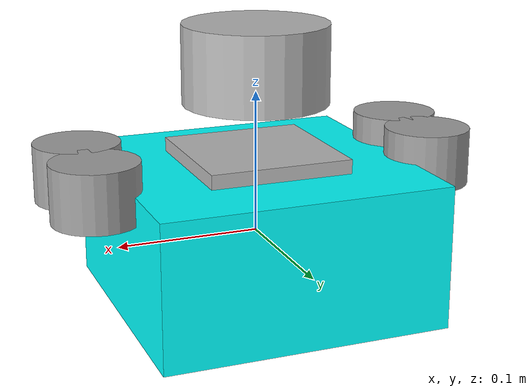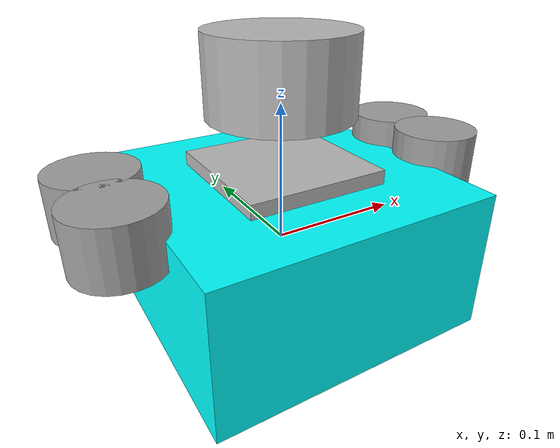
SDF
<sdf version='1.10'>
  <model name='x500_lidar'>
    <link name='base_link'>
      <inertial>
        <pose>0 0 0.001109298531810767 1.5707963267948959 -5.5511151231257827e-17 1.5707963267948959</pose>
        <mass>15.324999999999999</mass>
        <inertia>
          <ixx>0.065634475258292566</ixx>
          <ixy>-1.368455531567204e-48</ixy>
          <ixz>0</ixz>
          <iyy>0.1013333333333333</iyy>
          <iyz>-5.1022198180205497e-19</iyz>
          <izz>0.065634475258292566</izz>
        </inertia>
      </inertial>
      <collision name='base_link_collision'>
        <pose>0 0 0 0 0 0</pose>
        <geometry>
          <box>
            <size>0.20000000000000001 0.20000000000000001 0.10000000000000001</size>
          </box>
        </geometry>
      </collision>
      <collision name='base_link_fixed_joint_lump__air_link_collision_1'>
        <pose>0 0 0.01 0 0 0</pose>
        <geometry>
          <box>
            <size>0.10000000000000001 0.10000000000000001 0.10000000000000001</size>
          </box>
        </geometry>
        <surface>
          <contact>
            <ode/>
          </contact>
          <friction>
            <ode/>
          </friction>
        </surface>
      </collision>
      <collision name='base_link_fixed_joint_lump__imu_link_collision_2'>
        <pose>0 0 0.01 0 0 0</pose>
        <geometry>
          <box>
            <size>0.10000000000000001 0.10000000000000001 0.10000000000000001</size>
          </box>
        </geometry>
        <surface>
          <contact>
            <ode/>
          </contact>
          <friction>
            <ode/>
          </friction>
        </surface>
      </collision>
      <collision name='base_link_fixed_joint_lump__lidar_link_collision_3'>
        <pose>0 0 0.12 0 0 0</pose>
        <geometry>
          <cylinder>
            <length>0.055</length>
            <radius>0.050799999999999998</radius>
          </cylinder>
        </geometry>
        <surface>
          <contact>
            <ode/>
          </contact>
          <friction>
            <ode/>
          </friction>
        </surface>
      </collision>
      <visual name='base_link_visual'>
        <pose>0 0 0 0 0 0</pose>
        <geometry>
          <box>
            <size>0.20000000000000001 0.20000000000000001 0.10000000000000001</size>
          </box>
        </geometry>
        <material>
          <diffuse>0 1 1 1</diffuse>
          <ambient>0 1 1 1</ambient>
        </material>
      </visual>
      <visual name='base_link_fixed_joint_lump__air_link_visual_1'>
        <pose>0 0 0.01 0 0 0</pose>
        <geometry>
          <box>
            <size>0.10000000000000001 0.10000000000000001 0.10000000000000001</size>
          </box>
        </geometry>
      </visual>
      <visual name='base_link_fixed_joint_lump__imu_link_visual_2'>
        <pose>0 0 0.01 0 0 0</pose>
        <geometry>
          <box>
            <size>0.10000000000000001 0.10000000000000001 0.10000000000000001</size>
          </box>
        </geometry>
      </visual>
      <visual name='base_link_fixed_joint_lump__lidar_link_visual_3'>
        <pose>0 0 0.12 0 0 0</pose>
        <geometry>
          <cylinder>
            <length>0.055</length>
            <radius>0.050799999999999998</radius>
          </cylinder>
        </geometry>
      </visual>
      <sensor name='air_pressure_sensor' type='air_pressure'>
        <plugin name='gz::sim::systems::AirPressure' filename='gz-sim-air-pressure-system'/>
        <always_on>true</always_on>
        <update_rate>50</update_rate>
        <air_pressure>
          <pressure>
            <noise type='gaussian'>
              <mean>0</mean>
              <stddev>0.01</stddev>
            </noise>
          </pressure>
        </air_pressure>
        <pose>0 0 0.01 0 0 0</pose>
        <ignition_frame_id>cae_x500_lidar_0::base_link::air_pressure_sensor</ignition_frame_id>
      </sensor>
      <sensor name='imu_sensor' type='imu'>
        <plugin name='gz::sim::v7::systems::Imu' filename='libgz-sim-imu-system.so'/>
        <always_on>true</always_on>
        <update_rate>250</update_rate>
        <visualize>true</visualize>
        <imu>
          <angular_velocity>
            <x>
              <noise type='gaussian'>
                <mean>0</mean>
                <stddev>0.00020000000000000001</stddev>
                <bias_mean>0</bias_mean>
                <bias_stddev>7.9999999999999996e-07</bias_stddev>
              </noise>
            </x>
            <y>
              <noise type='gaussian'>
                <mean>0</mean>
                <stddev>0.00020000000000000001</stddev>
                <bias_mean>0</bias_mean>
                <bias_stddev>7.9999999999999996e-07</bias_stddev>
              </noise>
            </y>
            <z>
              <noise type='gaussian'>
                <mean>0</mean>
                <stddev>0.00020000000000000001</stddev>
                <bias_mean>0</bias_mean>
                <bias_stddev>7.9999999999999996e-07</bias_stddev>
              </noise>
            </z>
          </angular_velocity>
          <linear_acceleration>
            <x>
              <noise type='gaussian'>
                <mean>0</mean>
                <stddev>0.017000000000000001</stddev>
                <bias_mean>0</bias_mean>
                <bias_stddev>0.001</bias_stddev>
              </noise>
            </x>
            <y>
              <noise type='gaussian'>
                <mean>0</mean>
                <stddev>0.017000000000000001</stddev>
                <bias_mean>0</bias_mean>
                <bias_stddev>0.001</bias_stddev>
              </noise>
            </y>
            <z>
              <noise type='gaussian'>
                <mean>0</mean>
                <stddev>0.017000000000000001</stddev>
                <bias_mean>0</bias_mean>
                <bias_stddev>0.001</bias_stddev>
              </noise>
            </z>
          </linear_acceleration>
        </imu>
        <pose>0 0 0.01 0 0 0</pose>
        <ignition_frame_id>cae_x500_lidar_0::base_link::imu_sensor</ignition_frame_id>
      </sensor>
      <sensor name='lidar' type='gpu_lidar'>
        <always_on>true</always_on>
        <visualize>true</visualize>
        <update_rate>10</update_rate>
        <ray>
          <scan>
            <horizontal>
              <samples>400</samples>
              <resolution>1</resolution>
              <min_angle>0</min_angle>
              <max_angle>6.2800000000000002</max_angle>
            </horizontal>
          </scan>
          <range>
            <min>0.029999999999999999</min>
            <max>15</max>
            <resolution>0.025000000000000001</resolution>
          </range>
          <noise>
            <type>gaussian</type>
            <mean>0</mean>
            <stddev>0.01</stddev>
          </noise>
        </ray>
        <topic>scan</topic>
        <plugin name='gz::sim::systems::Sensors' filename='libgz-sim-sensors-system.so'/>
        <pose>0 0 0.12 0 0 0</pose>
        <ignition_frame_id>lidar_link</ignition_frame_id>
      </sensor>
    </link>
    <joint name='rotor_ne_joint' type='revolute'>
      <pose relative_to='base_link'>0.12 0.025000000000000001 0.050000000000000003 0 0 0</pose>
      <parent>base_link</parent>
      <child>rotor_ne_link</child>
      <axis>
        <xyz>0 0 1</xyz>
        <limit>
          <lower>-inf</lower>
          <upper>inf</upper>
        </limit>
        <dynamics>
          <spring_reference>0</spring_reference>
          <spring_stiffness>0</spring_stiffness>
        </dynamics>
      </axis>
    </joint>
    <link name='rotor_ne_link'>
      <pose relative_to='rotor_ne_joint'>0 0 0 0 0 0</pose>
      <inertial>
        <pose>0 0 0 1.5707963267948959 0 0</pose>
        <mass>0.5</mass>
        <inertia>
          <ixx>0.00017916666666666669</ixx>
          <ixy>0</ixy>
          <ixz>0</ixz>
          <iyy>0.00017916666666666669</iyy>
          <iyz>0</iyz>
          <izz>0.00022499999999999999</izz>
        </inertia>
      </inertial>
      <collision name='rotor_ne_link_fixed_joint_lump__rotor_ne_collision_collision'>
        <pose>0 0 0 0 0 0</pose>
        <geometry>
          <cylinder>
            <length>0.040000000000000001</length>
            <radius>0.029999999999999999</radius>
          </cylinder>
        </geometry>
      </collision>
      <visual name='rotor_ne_link_fixed_joint_lump__rotor_ne_visual_visual'>
        <pose>0 0 0 0 0 0</pose>
        <geometry>
          <cylinder>
            <length>0.040000000000000001</length>
            <radius>0.029999999999999999</radius>
          </cylinder>
        </geometry>
        <material>
          <diffuse>0.625 0.625 0.625 1</diffuse>
          <ambient>0.625 0.625 0.625 1</ambient>
        </material>
      </visual>
    </link>
    <joint name='rotor_no_joint' type='revolute'>
      <pose relative_to='base_link'>-0.12 0.025000000000000001 0.050000000000000003 0 0 0</pose>
      <parent>base_link</parent>
      <child>rotor_no_link</child>
      <axis>
        <xyz>0 0 1</xyz>
        <limit>
          <lower>-inf</lower>
          <upper>inf</upper>
        </limit>
        <dynamics>
          <spring_reference>0</spring_reference>
          <spring_stiffness>0</spring_stiffness>
        </dynamics>
      </axis>
    </joint>
    <link name='rotor_no_link'>
      <pose relative_to='rotor_no_joint'>0 0 0 0 0 0</pose>
      <inertial>
        <pose>0 0 0 1.5707963267948959 0 0</pose>
        <mass>0.5</mass>
        <inertia>
          <ixx>0.00017916666666666669</ixx>
          <ixy>0</ixy>
          <ixz>0</ixz>
          <iyy>0.00017916666666666669</iyy>
          <iyz>0</iyz>
          <izz>0.00022499999999999999</izz>
        </inertia>
      </inertial>
      <collision name='rotor_no_link_fixed_joint_lump__rotor_no_collision_collision'>
        <pose>0 0 0 0 0 0</pose>
        <geometry>
          <cylinder>
            <length>0.040000000000000001</length>
            <radius>0.029999999999999999</radius>
          </cylinder>
        </geometry>
      </collision>
      <visual name='rotor_no_link_fixed_joint_lump__rotor_no_visual_visual'>
        <pose>0 0 0 0 0 0</pose>
        <geometry>
          <cylinder>
            <length>0.040000000000000001</length>
            <radius>0.029999999999999999</radius>
          </cylinder>
        </geometry>
        <material>
          <diffuse>0.625 0.625 0.625 1</diffuse>
          <ambient>0.625 0.625 0.625 1</ambient>
        </material>
      </visual>
    </link>
    <joint name='rotor_se_joint' type='revolute'>
      <pose relative_to='base_link'>0.12 -0.025000000000000001 0.050000000000000003 0 0 0</pose>
      <parent>base_link</parent>
      <child>rotor_se_link</child>
      <axis>
        <xyz>0 0 1</xyz>
        <limit>
          <lower>-inf</lower>
          <upper>inf</upper>
        </limit>
        <dynamics>
          <spring_reference>0</spring_reference>
          <spring_stiffness>0</spring_stiffness>
        </dynamics>
      </axis>
    </joint>
    <link name='rotor_se_link'>
      <pose relative_to='rotor_se_joint'>0 0 0 0 0 0</pose>
      <inertial>
        <pose>0 0 0 1.5707963267948959 0 0</pose>
        <mass>0.5</mass>
        <inertia>
          <ixx>0.00017916666666666669</ixx>
          <ixy>0</ixy>
          <ixz>0</ixz>
          <iyy>0.00017916666666666669</iyy>
          <iyz>0</iyz>
          <izz>0.00022499999999999999</izz>
        </inertia>
      </inertial>
      <collision name='rotor_se_link_fixed_joint_lump__rotor_se_collision_collision'>
        <pose>0 0 0 0 0 0</pose>
        <geometry>
          <cylinder>
            <length>0.040000000000000001</length>
            <radius>0.029999999999999999</radius>
          </cylinder>
        </geometry>
      </collision>
      <visual name='rotor_se_link_fixed_joint_lump__rotor_se_visual_visual'>
        <pose>0 0 0 0 0 0</pose>
        <geometry>
          <cylinder>
            <length>0.040000000000000001</length>
            <radius>0.029999999999999999</radius>
          </cylinder>
        </geometry>
        <material>
          <diffuse>0.625 0.625 0.625 1</diffuse>
          <ambient>0.625 0.625 0.625 1</ambient>
        </material>
      </visual>
    </link>
    <joint name='rotor_so_joint' type='revolute'>
      <pose relative_to='base_link'>-0.12 -0.025000000000000001 0.050000000000000003 0 0 0</pose>
      <parent>base_link</parent>
      <child>rotor_so_link</child>
      <axis>
        <xyz>0 0 1</xyz>
        <limit>
          <lower>-inf</lower>
          <upper>inf</upper>
        </limit>
        <dynamics>
          <spring_reference>0</spring_reference>
          <spring_stiffness>0</spring_stiffness>
        </dynamics>
      </axis>
    </joint>
    <link name='rotor_so_link'>
      <pose relative_to='rotor_so_joint'>0 0 0 0 0 0</pose>
      <inertial>
        <pose>0 0 0 1.5707963267948959 0 0</pose>
        <mass>0.5</mass>
        <inertia>
          <ixx>0.00017916666666666669</ixx>
          <ixy>0</ixy>
          <ixz>0</ixz>
          <iyy>0.00017916666666666669</iyy>
          <iyz>0</iyz>
          <izz>0.00022499999999999999</izz>
        </inertia>
      </inertial>
      <collision name='rotor_so_link_fixed_joint_lump__rotor_so_collision_collision'>
        <pose>0 0 0 0 0 0</pose>
        <geometry>
          <cylinder>
            <length>0.040000000000000001</length>
            <radius>0.029999999999999999</radius>
          </cylinder>
        </geometry>
      </collision>
      <visual name='rotor_so_link_fixed_joint_lump__rotor_so_visual_visual'>
        <pose>0 0 0 0 0 0</pose>
        <geometry>
          <cylinder>
            <length>0.040000000000000001</length>
            <radius>0.029999999999999999</radius>
          </cylinder>
        </geometry>
        <material>
          <diffuse>0.625 0.625 0.625 1</diffuse>
          <ambient>0.625 0.625 0.625 1</ambient>
        </material>
      </visual>
    </link>
    <plugin name='gz::sim::systems::MulticopterMotorModel' filename='gz-sim-multicopter-motor-model-system'>
      <jointName>rotor_ne_joint</jointName>
      <linkName>rotor_ne_link</linkName>
      <turningDirection>ccw</turningDirection>
      <timeConstantUp>0.0125</timeConstantUp>
      <timeConstantDown>0.025</timeConstantDown>
      <maxRotVelocity>1000.0</maxRotVelocity>
      <motorConstant>8.54858e-06</motorConstant>
      <momentConstant>0.016</momentConstant>
      <commandSubTopic>command/motor_speed</commandSubTopic>
      <motorNumber>0</motorNumber>
      <rotorDragCoefficient>8.06428e-05</rotorDragCoefficient>
      <rollingMomentCoefficient>1e-06</rollingMomentCoefficient>
      <rotorVelocitySlowdownSim>10</rotorVelocitySlowdownSim>
      <motorType>velocity</motorType>
    </plugin>
    <plugin name='gz::sim::systems::MulticopterMotorModel' filename='gz-sim-multicopter-motor-model-system'>
      <jointName>rotor_se_joint</jointName>
      <linkName>rotor_se_link</linkName>
      <turningDirection>cw</turningDirection>
      <timeConstantUp>0.0125</timeConstantUp>
      <timeConstantDown>0.025</timeConstantDown>
      <maxRotVelocity>1000.0</maxRotVelocity>
      <motorConstant>8.54858e-06</motorConstant>
      <momentConstant>0.016</momentConstant>
      <commandSubTopic>command/motor_speed</commandSubTopic>
      <motorNumber>1</motorNumber>
      <rotorDragCoefficient>8.06428e-05</rotorDragCoefficient>
      <rollingMomentCoefficient>1e-06</rollingMomentCoefficient>
      <rotorVelocitySlowdownSim>10</rotorVelocitySlowdownSim>
      <motorType>velocity</motorType>
    </plugin>
    <plugin name='gz::sim::systems::MulticopterMotorModel' filename='gz-sim-multicopter-motor-model-system'>
      <jointName>rotor_so_joint</jointName>
      <linkName>rotor_so_link</linkName>
      <turningDirection>ccw</turningDirection>
      <timeConstantUp>0.0125</timeConstantUp>
      <timeConstantDown>0.025</timeConstantDown>
      <maxRotVelocity>1000.0</maxRotVelocity>
      <motorConstant>8.54858e-06</motorConstant>
      <momentConstant>0.016</momentConstant>
      <commandSubTopic>command/motor_speed</commandSubTopic>
      <motorNumber>2</motorNumber>
      <rotorDragCoefficient>8.06428e-05</rotorDragCoefficient>
      <rollingMomentCoefficient>1e-06</rollingMomentCoefficient>
      <rotorVelocitySlowdownSim>10</rotorVelocitySlowdownSim>
      <motorType>velocity</motorType>
    </plugin>
    <plugin name='gz::sim::systems::MulticopterMotorModel' filename='gz-sim-multicopter-motor-model-system'>
      <jointName>rotor_no_joint</jointName>
      <linkName>rotor_no_link</linkName>
      <turningDirection>cw</turningDirection>
      <timeConstantUp>0.0125</timeConstantUp>
      <timeConstantDown>0.025</timeConstantDown>
      <maxRotVelocity>1000.0</maxRotVelocity>
      <motorConstant>8.54858e-06</motorConstant>
      <momentConstant>0.016</momentConstant>
      <commandSubTopic>command/motor_speed</commandSubTopic>
      <motorNumber>3</motorNumber>
      <rotorDragCoefficient>8.06428e-05</rotorDragCoefficient>
      <rollingMomentCoefficient>1e-06</rollingMomentCoefficient>
      <rotorVelocitySlowdownSim>10</rotorVelocitySlowdownSim>
      <motorType>velocity</motorType>
    </plugin>
    <frame name='air_joint' attached_to='base_link'>
      <pose>0 0 0.01 0 0 0</pose>
    </frame>
    <frame name='air_link' attached_to='air_joint'>
      <pose>0 0 0 0 0 0</pose>
    </frame>
    <frame name='base_joint' attached_to='base_link'>
      <pose>0 0 -0.080000000000000002 0 0 0</pose>
    </frame>
    <frame name='base_footprint' attached_to='base_joint'>
      <pose>0 0 0 0 0 0</pose>
    </frame>
    <frame name='imu_joint' attached_to='base_link'>
      <pose>0 0 0.01 0 0 0</pose>
    </frame>
    <frame name='imu_link' attached_to='imu_joint'>
      <pose>0 0 0 0 0 0</pose>
    </frame>
    <frame name='lidar_joint' attached_to='base_link'>
      <pose>0 0 0.12 0 0 0</pose>
    </frame>
    <frame name='lidar_link' attached_to='lidar_joint'>
      <pose>0 0 0 0 0 0</pose>
    </frame>
  </model>
</sdf>
